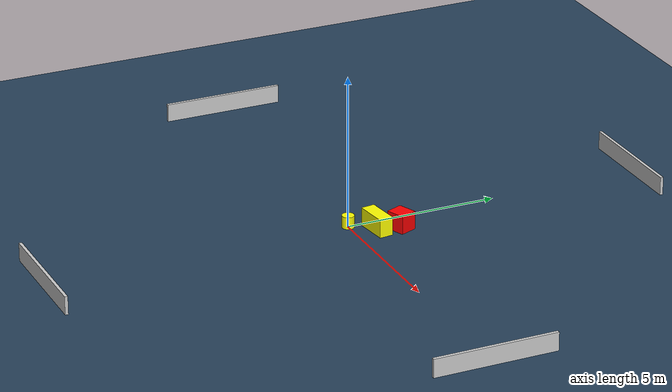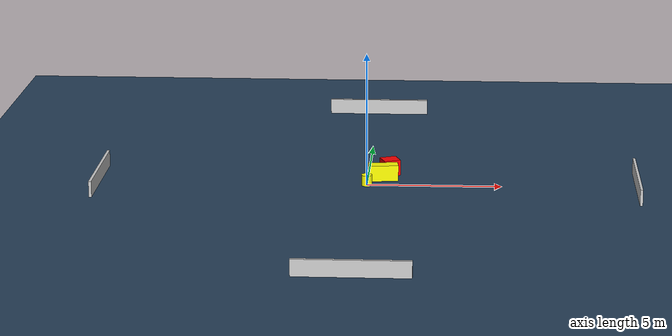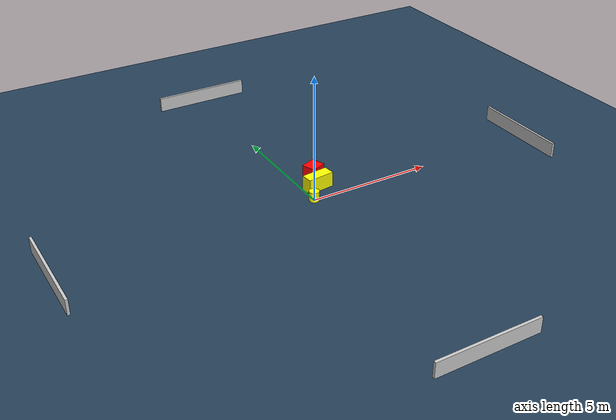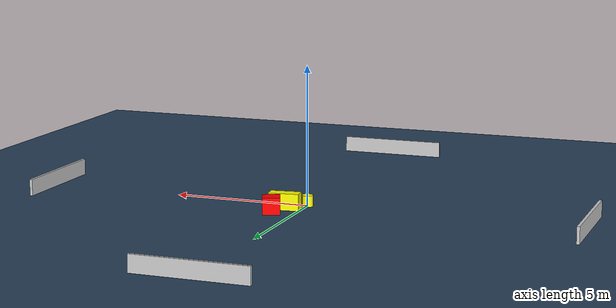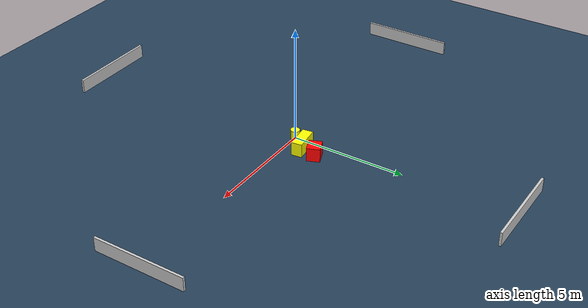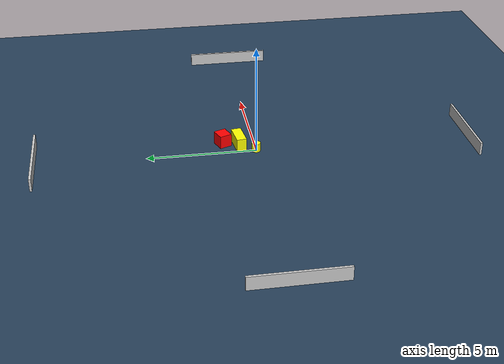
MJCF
<?xml version="1.0" ?>
<mujoco model="generated_environment">
  <option timestep="0.01" integrator="RK4" cone="elliptic"/>
  <default>
    <geom density="1"/>
  </default>
  <asset>
    <texture builtin="gradient" height="3072" name="skybox" rgb1="0.3 0.5 0.7" rgb2="0 0 0" type="skybox" width="512"/>
    <texture builtin="checker" height="300" name="groundplane" rgb1="0.2 0.3 0.4" rgb2="0.1 0.2 0.3" type="2d" width="300"/>
    <material name="groundplane" reflectance="0.2" texrepeat="5 5" texture="groundplane"/>
  </asset>
  <worldbody>
    <light dir="0 0 -1" directional="true" pos="0 0 1.5"/>
    <geom condim="3" friction="0.5 0.005 0.001" material="groundplane" name="floor" pos="0 0 0" size="0 0 0.05" type="plane"/>
    <body name="walls">
      <geom name="wall_1" condim="4" pos="-10.0 0.0 0.3" rgba="0.800000011920929 0.800000011920929 0.800000011920929 1.0" size="0.05 2.0 0.3" type="box"/>
      <geom name="wall_2" condim="4" pos="10.0 0.0 0.3" rgba="0.800000011920929 0.800000011920929 0.800000011920929 1.0" size="0.05 2.0 0.3" type="box"/>
      <geom name="wall_3" condim="4" pos="0.0 -10.0 0.3" rgba="0.800000011920929 0.800000011920929 0.800000011920929 1.0" size="2.0 0.05 0.3" type="box"/>
      <geom name="wall_4" condim="4" pos="0.0 10.0 0.3" rgba="0.800000011920929 0.800000011920929 0.800000011920929 1.0" size="2.0 0.05 0.3" type="box"/>
    </body>
    <body name="robot">
      <joint name="joint_x" type="slide" pos="0 0 0" axis="1 0 0"/>
      <joint name="joint_y" type="slide" pos="0 0 0" axis="0 1 0"/>
      <geom name="robot" type="cylinder" pos="0.0 0.0 0.2" size="0.2 0.2 0.0" mass="5.0" friction="1.0 0.005 0.0001" condim="4" rgba="1.0 1.0 0.0 1.0"/>
    </body>
    <body name="obstacle_1_movable">
      <geom name="obstacle_1_movable" condim="4" pos="0.5828583800868103 0.7167905695660415 0.3" euler="0 0 276.86699169157686" friction="0.0 0.005 0.001" rgba="1.0 1.0 0.0 1.0" size="0.2281964827477936 0.5461623674069025 0.3" type="box" mass="0.1"/>
      <joint type="free"/>
    </body>
    <body name="obstacle_2_static">
      <geom name="obstacle_2_static" condim="4" pos="0.807436813036831 1.4369977045591371 0.3" euler="0 0 201.73997875629126" friction="0.0 0.005 0.001" rgba="1.0 0.0 0.0 1.0" size="0.314408023951957 0.2850900479305501 0.3" type="box"/>
    </body>
  </worldbody>
  <actuator>
    <motor name="actuator_x" joint="joint_x" gear="1" ctrlrange="-1 1"/>
    <motor name="actuator_y" joint="joint_y" gear="1" ctrlrange="-1 1"/>
  </actuator>
</mujoco>
